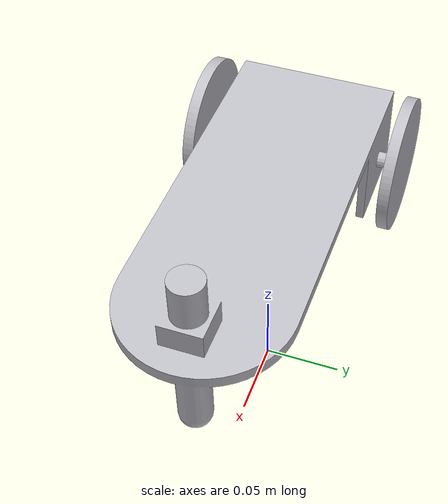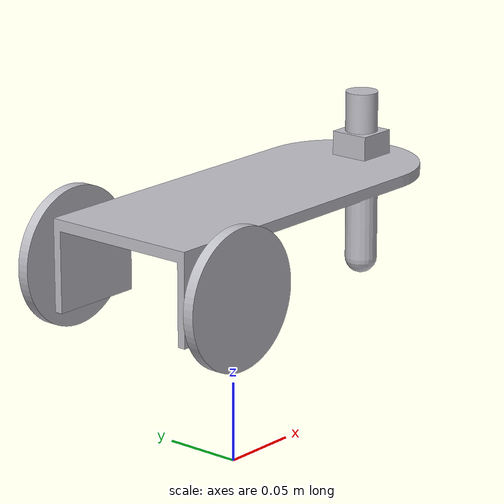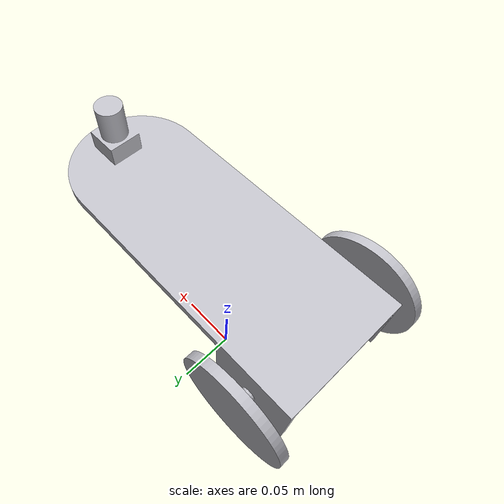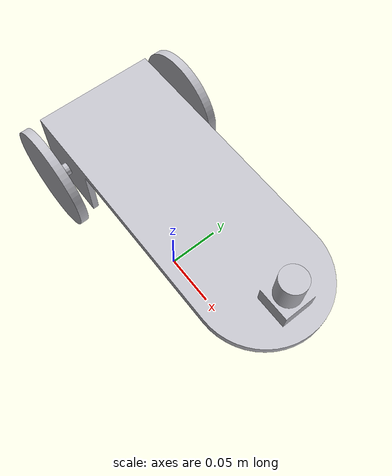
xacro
<?xml version="1.0" ?>
<robot name="bot" xmlns:xacro="http://www.ros.org/wiki/xacro">

<xacro:include filename="$(find bot_description)/urdf/materials.xacro" />
<xacro:include filename="$(find bot_description)/urdf/bot.trans" />
<xacro:include filename="$(find bot_description)/urdf/bot.gazebo" />
<link name="base_link">
  <inertial>
    <origin xyz="0.013859344944877732 0.0024070037849872536 0.19634754778858285" rpy="0 0 0"/>
    <mass value="1.800622662096659"/>
    <inertia ixx="0.002095" iyy="0.011434" izz="0.012595" ixy="-0.0" iyz="0.0" ixz="-0.000106"/>
  </inertial>
  <visual>
    <origin xyz="0 0 0" rpy="0 0 0"/>
    <geometry>
      <mesh filename="package://bot_description/meshes/base_link.stl" scale="0.001 0.001 0.001"/>
    </geometry>
    <material name="silver"/>
  </visual>
  <collision>
    <origin xyz="0 0 0" rpy="0 0 0"/>
    <geometry>
      <mesh filename="package://bot_description/meshes/base_link.stl" scale="0.001 0.001 0.001"/>
    </geometry>
  </collision>
</link>

<link name="lidar_1">
  <inertial>
    <origin xyz="3.126616823778683e-07 3.7849871401159085e-09 0.01249955082776913" rpy="0 0 0"/>
    <mass value="0.06165375582669969"/>
    <inertia ixx="5e-06" iyy="5e-06" izz="3e-06" ixy="-0.0" iyz="0.0" ixz="-0.0"/>
  </inertial>
  <visual>
    <origin xyz="-0.115189 -0.002407 -0.221688" rpy="0 0 0"/>
    <geometry>
      <mesh filename="package://bot_description/meshes/lidar_1.stl" scale="0.001 0.001 0.001"/>
    </geometry>
    <material name="silver"/>
  </visual>
  <collision>
    <origin xyz="-0.115189 -0.002407 -0.221688" rpy="0 0 0"/>
    <geometry>
      <mesh filename="package://bot_description/meshes/lidar_1.stl" scale="0.001 0.001 0.001"/>
    </geometry>
  </collision>
</link>

<link name="left_wheel_1">
  <inertial>
    <origin xyz="3.126616814619343e-07 0.0035000037849869173 -4.4917222907780996e-07" rpy="0 0 0"/>
    <mass value="0.3118138700935337"/>
    <inertia ixx="0.000142" iyy="0.000282" izz="0.000142" ixy="0.0" iyz="-0.0" ixz="0.0"/>
  </inertial>
  <visual>
    <origin xyz="0.077311 -0.062407 -0.174688" rpy="0 0 0"/>
    <geometry>
      <mesh filename="package://bot_description/meshes/left_wheel_1.stl" scale="0.001 0.001 0.001"/>
    </geometry>
    <material name="silver"/>
  </visual>
  <collision>
    <origin xyz="0.077311 -0.062407 -0.174688" rpy="0 0 0"/>
    <geometry>
      <mesh filename="package://bot_description/meshes/left_wheel_1.stl" scale="0.001 0.001 0.001"/>
    </geometry>
  </collision>
</link>

<link name="right_wheel_1">
  <inertial>
    <origin xyz="3.1266168139254535e-07 -0.003499996215012312 -4.4917222910556553e-07" rpy="0 0 0"/>
    <mass value="0.3118138700935337"/>
    <inertia ixx="0.000142" iyy="0.000282" izz="0.000142" ixy="-0.0" iyz="-0.0" ixz="0.0"/>
  </inertial>
  <visual>
    <origin xyz="0.077311 0.057593 -0.174688" rpy="0 0 0"/>
    <geometry>
      <mesh filename="package://bot_description/meshes/right_wheel_1.stl" scale="0.001 0.001 0.001"/>
    </geometry>
    <material name="silver"/>
  </visual>
  <collision>
    <origin xyz="0.077311 0.057593 -0.174688" rpy="0 0 0"/>
    <geometry>
      <mesh filename="package://bot_description/meshes/right_wheel_1.stl" scale="0.001 0.001 0.001"/>
    </geometry>
  </collision>
</link>

<joint name="Rev3" type="continuous">
  <origin xyz="0.115189 0.002407 0.221688" rpy="0 0 0"/>
  <parent link="base_link"/>
  <child link="lidar_1"/>
  <axis xyz="0.0 0.0 1.0"/>
</joint>

<joint name="Rev6" type="continuous">
  <origin xyz="-0.077311 0.062407 0.174688" rpy="0 0 0"/>
  <parent link="base_link"/>
  <child link="left_wheel_1"/>
  <axis xyz="0.0 1.0 0.0"/>
</joint>

<joint name="Rev7" type="continuous">
  <origin xyz="-0.077311 -0.057593 0.174688" rpy="0 0 0"/>
  <parent link="base_link"/>
  <child link="right_wheel_1"/>
  <axis xyz="0.0 1.0 0.0"/>
</joint>

</robot>

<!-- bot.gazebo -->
<robot name="bot" xmlns:xacro="http://www.ros.org/wiki/xacro" >

<xacro:property name="body_color" value="Gazebo/Silver" />

<gazebo>
  <plugin name="control" filename="libgazebo_ros_control.so"/>
</gazebo>
<gazebo reference="base_link">
  <material>${body_color}</material>
  <mu1>3500</mu1>
  <mu2>3500</mu2>
  <selfCollide>true</selfCollide>
  <gravity>true</gravity>
</gazebo>

<gazebo reference="lidar_1">
  <material>${body_color}</material>
  <mu1>0.2</mu1>
  <mu2>0.2</mu2>
  <selfCollide>true</selfCollide>
</gazebo>

<gazebo reference="left_wheel_1">
  <material>${body_color}</material>
  <mu1>3500</mu1>
  <mu2>3500</mu2>
  <selfCollide>true</selfCollide>
</gazebo>

<gazebo reference="right_wheel_1">
  <material>${body_color}</material>
  <mu1>3500</mu1>
  <mu2>3500</mu2>
  <selfCollide>true</selfCollide>
</gazebo>
  <gazebo>
  <plugin name="differential_drive_controller" filename="libgazebo_ros_diff_drive.so">

    <!-- Plugin update rate in Hz -->
    <updateRate>${1000}</updateRate>

    <!-- Name of left joint, defaults to `left_joint` -->
    <leftJoint>Rev6</leftJoint>

    <!-- Name of right joint, defaults to `right_joint` -->
    <rightJoint>Rev7</rightJoint>

    <!-- The distance from the center of one wheel to the other, in meters, defaults to 0.34 m -->
    <wheelSeparation>0.5380</wheelSeparation>

    <!-- Diameter of the wheels, in meters, defaults to 0.15 m -->
    <wheelDiameter>0.2410</wheelDiameter>

    <!-- Wheel acceleration, in rad/s^2, defaults to 0.0 rad/s^2 -->
    <wheelAcceleration>1.0</wheelAcceleration>

    <!-- Maximum torque which the wheels can produce, in Nm, defaults to 5 Nm -->
    <wheelTorque>20</wheelTorque>

    <!-- Topic to receive geometry_msgs/Twist message commands, defaults to `cmd_vel` -->
    <commandTopic>cmd_vel</commandTopic>

    <!-- Topic to publish nav_msgs/Odometry messages, defaults to `odom` -->
    <odometryTopic>odom</odometryTopic>

    <!-- Odometry frame, defaults to `odom` -->
    <odometryFrame>odom</odometryFrame>

    <!-- Robot frame to calculate odometry from, defaults to `base_footprint` -->
    <robotBaseFrame>base_footprint</robotBaseFrame>

    <!-- Odometry source, 0 for ENCODER, 1 for WORLD, defaults to WORLD -->
    <odometrySource>1</odometrySource>

    <!-- Set to true to publish transforms for the wheel links, defaults to false -->
    <publishWheelTF>true</publishWheelTF>

    <!-- Set to true to publish transforms for the odometry, defaults to true -->
    <publishOdom>true</publishOdom>

    <!-- Set to true to publish sensor_msgs/JointState on /joint_states for the wheel joints, defaults to false -->
    <publishWheelJointState>true</publishWheelJointState>

    <!-- Set to true to swap right and left wheels, defaults to true -->
    <legacyMode>false</legacyMode>
  </plugin>
</gazebo>

</robot>
